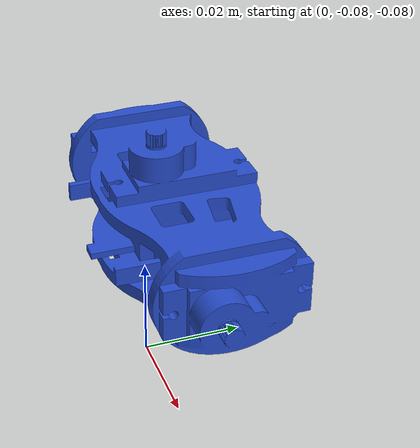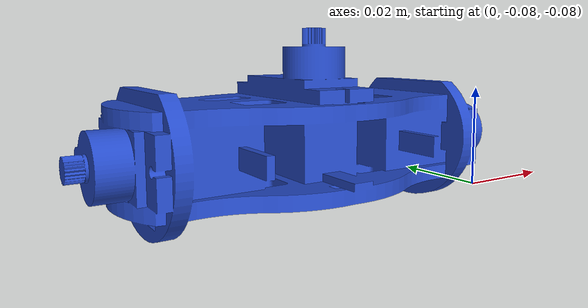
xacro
<?xml version="1.0"?>

<robot name="billi" xmlns:xacro="http://www.ros.org/wiki/xacro">

   <link name="body">
    <visual>
	<origin rpy="0 0 0" xyz="0 0 0"/>
      <geometry>
        <mesh filename="package://billi_sim/models/meshes/shoulder.stl" scale ="1 1 1"/>
      </geometry>
      <material name="blue"/>
    </visual>
    <collision>
      <geometry>
        <mesh filename="package://billi_sim/models/meshes/shoulder.stl" scale ="1 1 1"/>
      </geometry>
    </collision>
	<inertial>
		  <mass value="1.5"/>
		  <origin rpy="0 0 0" xyz="0 0 0.1"/>
		  <inertia ixx="0.0395416666667" ixy="0" ixz="0" iyy="0.106208333333" iyz="0" izz="0.106208333333"/>
		</inertial>

  </link>
<gazebo reference="shoulder">
        <kp>1000.0</kp>
        <kd>1000.0</kd>
        <mu1>10.0</mu1>
        <mu2>10.0</mu2>
        <material>Gazebo/blue</material>
    </gazebo>

</robot>
